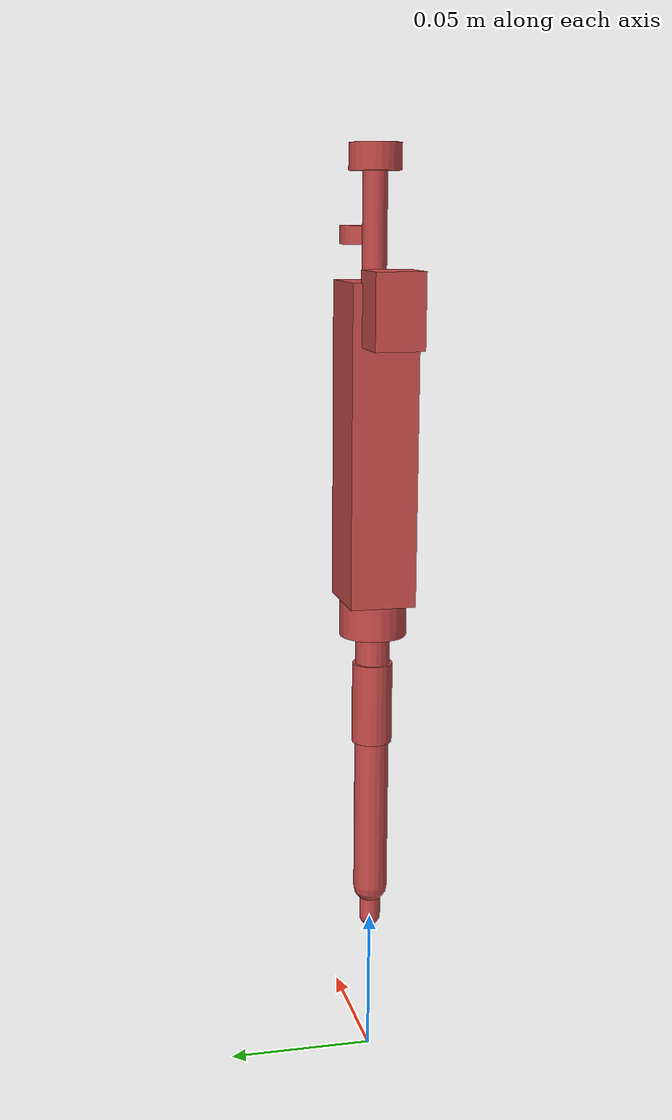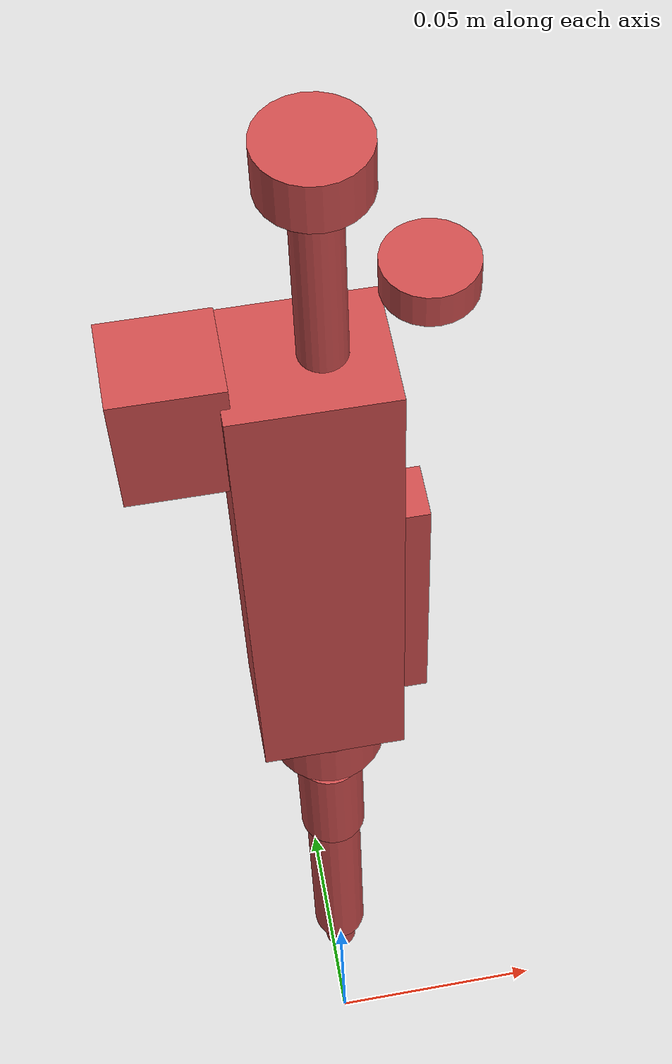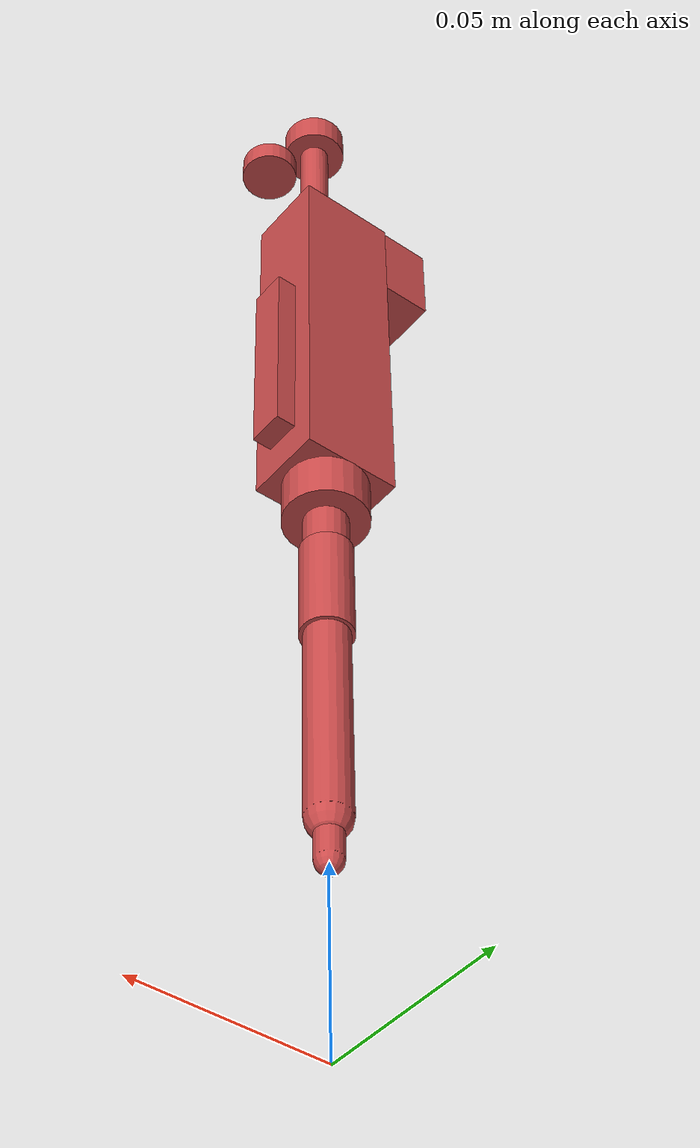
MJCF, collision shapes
<mujoco model="micropipette">
  <compiler angle="radian" meshdir="meshes" autolimits="true"/>
  <option gravity="0 0 -9.81"/>
  <default>
    <default class="pipette_visual"><geom type="mesh" contype="0" conaffinity="0" group="2" mass="0"/></default>
    <default class="pipette_collision"><geom group="3" condim="4" friction="0.9 0.005 0.0001" solref="0.005 1" rgba="0.8 0.3 0.3 0.3"/></default>
  </default>
  <asset>
    <material name="pip_white" rgba="0.93000 0.93000 0.92000 1.00000" specular="0.3" shininess="0.55"/>
    <material name="pip_blue" rgba="0.41000 0.58000 0.87000 1.00000" specular="0.3" shininess="0.60"/>
    <material name="pip_dark" rgba="0.06000 0.06000 0.07000 1.00000" specular="0.3" shininess="0.65"/>
    <material name="pip_display" rgba="0.02000 0.02000 0.02000 1.00000" specular="0.3" shininess="0.85"/>
    <mesh name="pip_tip_cone" file="tip_cone.stl"/>
    <mesh name="pip_shaft" file="shaft.stl"/>
    <mesh name="pip_collar" file="collar.stl"/>
    <mesh name="pip_body" file="body.stl"/>
    <mesh name="pip_finger_hook" file="finger_hook.stl"/>
    <mesh name="pip_display" file="display.stl"/>
    <mesh name="pip_label_ridge" file="label_ridge.stl"/>
    <mesh name="pip_plunger_shaft" file="plunger_shaft.stl"/>
    <mesh name="pip_plunger_button" file="plunger_button.stl"/>
    <mesh name="pip_ejector_rod" file="ejector_rod.stl"/>
    <mesh name="pip_ejector_guide" file="ejector_guide.stl"/>
    <mesh name="pip_ejector_button" file="ejector_button.stl"/>
    <mesh name="pip_ejector_sleeve" file="ejector_sleeve.stl"/>
    <mesh name="pip_ejector_arm" file="ejector_arm.stl"/>
  </asset>
  <worldbody>
    <body name="micropipette" pos="0 0 0.05">
      <freejoint name="micropipette_free"/>
      <site name="pipette_grip" pos="0 0 0.1685" size="0.004" rgba="0 1 0 0.5"/>
      <site name="pipette_tip" pos="0 0 0" size="0.002" rgba="1 0 0 0.5"/>
      <inertial pos="-0.00092 0.00000 0.11946" mass="0.1" diaginertia="4.681e-04 4.828e-04 2.430e-05"/>
      <geom class="pipette_visual" mesh="pip_tip_cone" material="pip_dark" name="vis_tip_cone"/>
      <geom class="pipette_visual" mesh="pip_shaft" material="pip_blue" name="vis_shaft"/>
      <geom class="pipette_visual" mesh="pip_collar" material="pip_blue" name="vis_collar"/>
      <geom class="pipette_visual" mesh="pip_body" material="pip_white" name="vis_body"/>
      <geom class="pipette_visual" mesh="pip_finger_hook" material="pip_white" name="vis_finger_hook"/>
      <geom class="pipette_visual" mesh="pip_display" material="pip_display" name="vis_display"/>
      <geom class="pipette_visual" mesh="pip_label_ridge" material="pip_white" name="vis_label_ridge"/>
      <geom class="pipette_visual" mesh="pip_ejector_guide" material="pip_white" name="vis_ejector_guide"/>
      <geom class="pipette_collision" type="box" pos="0.00000 0.00000 0.16850" size="0.01350 0.01100 0.05250" name="col_body_0"/>
      <geom class="pipette_collision" type="capsule" fromto="0.00000 0.00000 0.01200 0.00000 0.00000 0.11600" size="0.00580" name="col_body_1"/>
      <geom class="pipette_collision" type="capsule" fromto="0.00000 0.00000 0.00050 0.00000 0.00000 0.01400" size="0.00360" name="col_body_2"/>
      <geom class="pipette_collision" type="cylinder" pos="0.00000 0.00000 0.11000" size="0.01120 0.00600" name="col_body_3"/>
      <geom class="pipette_collision" type="box" pos="-0.02100 0.00000 0.21300" size="0.00900 0.00800 0.01200" name="col_body_4"/>
      <geom class="pipette_collision" type="box" pos="0.01550 0.00000 0.15400" size="0.00350 0.00500 0.02800" name="col_body_5"/>
      <body name="pipette_plunger" pos="0 0 0">
        <joint name="pipette_plunger_slide" type="slide" axis="0 0 1" range="-0.014 0.0" stiffness="350.0" damping="0.4" springref="0" armature="0.0005"/>
        <inertial pos="0.00300 0.00000 0.24962" mass="0.01" diaginertia="2.366e-06 2.366e-06 4.817e-07"/>
        <geom class="pipette_visual" mesh="pip_plunger_shaft" material="pip_white" name="vis_plunger_shaft"/>
        <geom class="pipette_visual" mesh="pip_plunger_button" material="pip_blue" name="vis_plunger_button"/>
        <geom class="pipette_collision" type="cylinder" pos="0.00300 0.00000 0.25925" size="0.00850 0.00425" name="col_plunger_0"/>
        <geom class="pipette_collision" type="cylinder" pos="0.00300 0.00000 0.24000" size="0.00400 0.02100" name="col_plunger_1"/>
      </body>
      <body name="pipette_ejector" pos="0 0 0">
        <joint name="pipette_ejector_slide" type="slide" axis="0 0 1" range="-0.008 0.0" stiffness="500.0" damping="0.4" springref="0" armature="0.0005"/>
        <inertial pos="0.00950 0.00000 0.15750" mass="0.005" diaginertia="1.242e-05 1.279e-05 5.558e-07"/>
        <geom class="pipette_visual" mesh="pip_ejector_rod" material="pip_blue" name="vis_ejector_rod"/>
        <geom class="pipette_visual" mesh="pip_ejector_button" material="pip_blue" name="vis_ejector_button"/>
        <geom class="pipette_visual" mesh="pip_ejector_sleeve" material="pip_blue" name="vis_ejector_sleeve"/>
        <geom class="pipette_visual" mesh="pip_ejector_arm" material="pip_blue" name="vis_ejector_arm"/>
        <geom class="pipette_collision" type="cylinder" pos="0.01900 0.00000 0.23500" size="0.00750 0.00300" name="col_ejector_0"/>
        <geom class="pipette_collision" type="cylinder" pos="0.00000 0.00000 0.08000" size="0.00680 0.01400" name="col_ejector_1"/>
      </body>
    </body>
  </worldbody>
  <actuator>
    <position name="pipette_plunger_act" joint="pipette_plunger_slide" kp="600" ctrlrange="-0.014 0"/>
    <position name="pipette_ejector_act" joint="pipette_ejector_slide" kp="800" ctrlrange="-0.008 0"/>
  </actuator>
  <contact>
    <exclude body1="micropipette" body2="pipette_plunger"/>
    <exclude body1="micropipette" body2="pipette_ejector"/>
    <exclude body1="pipette_plunger" body2="pipette_ejector"/>
  </contact>
</mujoco>
